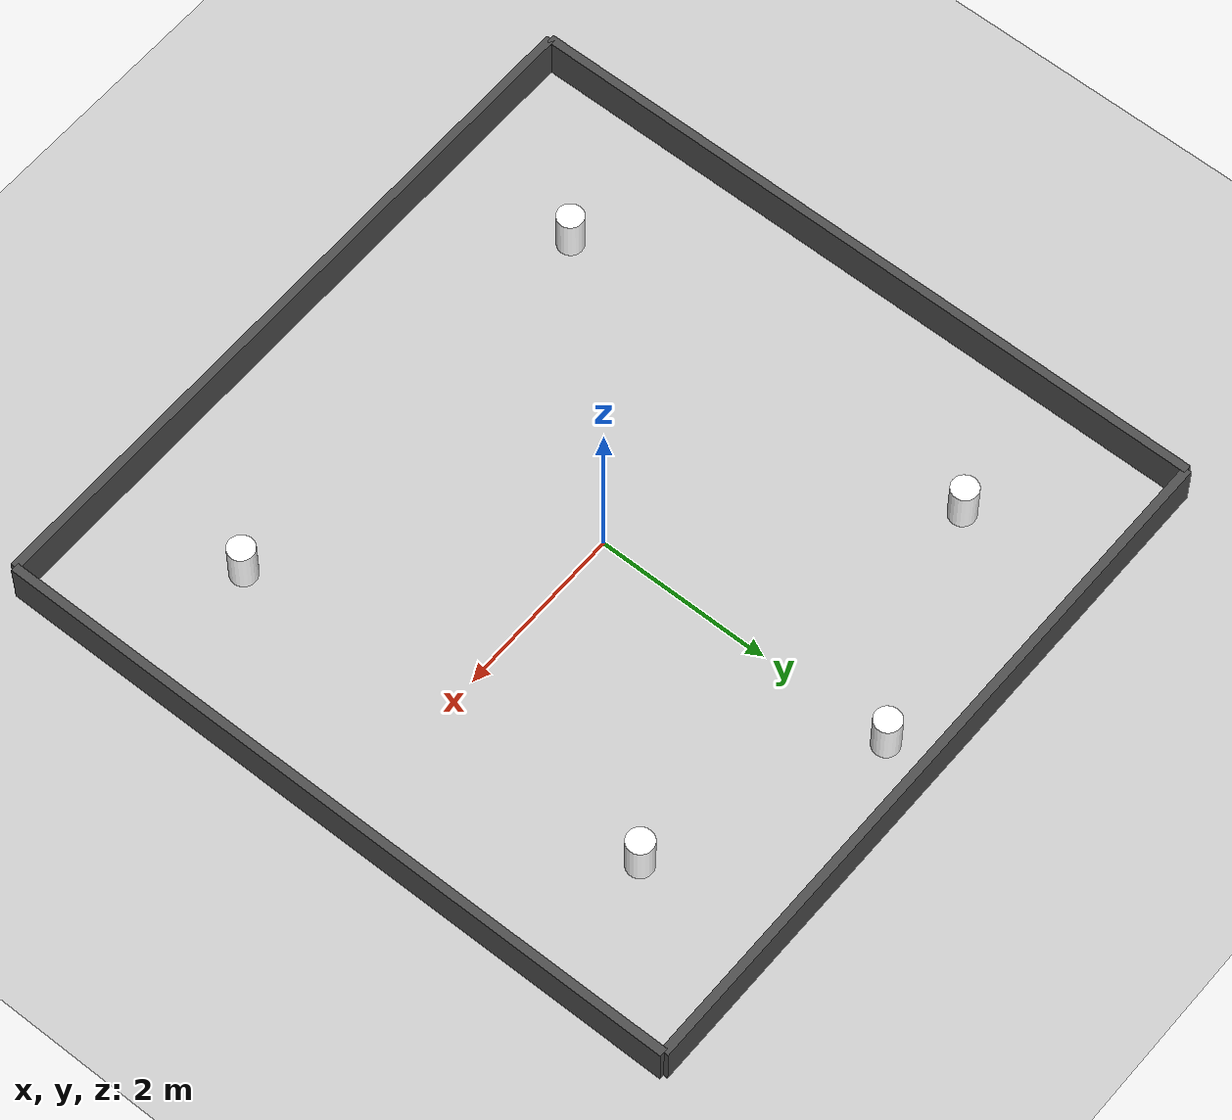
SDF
<?xml version="1.0" ?>
<sdf version="1.8">
  <world name="demo_world">

    <gravity>0 0 -9.8</gravity>
    <physics default="0" name="default_physics" type="ode">
      <max_step_size>0.01</max_step_size>
      <real_time_factor>1</real_time_factor>
      <real_time_update_rate>100</real_time_update_rate>
    </physics>

    <plugin filename="gz-sim-physics-system"
            name="gz::sim::systems::Physics"/>
    <plugin filename="gz-sim-user-commands-system"
            name="gz::sim::systems::UserCommands"/>
    <plugin filename="gz-sim-scene-broadcaster-system"
            name="gz::sim::systems::SceneBroadcaster"/>

    <light name="sun" type="directional">
      <cast_shadows>true</cast_shadows>
      <pose>0 0 10 0 0 0</pose>
      <diffuse>0.8 0.8 0.8 1</diffuse>
      <specular>0.2 0.2 0.2 1</specular>
      <attenuation>
        <range>1000</range>
        <constant>0.9</constant>
        <linear>0.01</linear>
        <quadratic>0.001</quadratic>
      </attenuation>
      <direction>-0.5 0.1 -0.9</direction>
    </light>

    <!-- Ground plane -->
    <model name="ground_plane">
      <static>true</static>
      <link name="link">
        <collision name="collision">
          <geometry>
            <plane><normal>0 0 1</normal><size>100 100</size></plane>
          </geometry>
        </collision>
        <visual name="visual">
          <geometry>
            <plane><normal>0 0 1</normal><size>100 100</size></plane>
          </geometry>
          <material>
            <ambient>0.8 0.8 0.8 1</ambient>
            <diffuse>0.8 0.8 0.8 1</diffuse>
          </material>
        </visual>
      </link>
    </model>

    <!-- Walls (8x8m enclosure, 0.1m thick, 0.5m tall) -->
    <model name="wall_north">
      <static>true</static>
      <pose>0 4.05 0.25 0 0 0</pose>
      <link name="link">
        <collision name="collision">
          <geometry><box><size>8.1 0.1 0.5</size></box></geometry>
        </collision>
        <visual name="visual">
          <geometry><box><size>8.1 0.1 0.5</size></box></geometry>
          <material><ambient>0.3 0.3 0.3 1</ambient><diffuse>0.3 0.3 0.3 1</diffuse></material>
        </visual>
      </link>
    </model>

    <model name="wall_south">
      <static>true</static>
      <pose>0 -4.05 0.25 0 0 0</pose>
      <link name="link">
        <collision name="collision">
          <geometry><box><size>8.1 0.1 0.5</size></box></geometry>
        </collision>
        <visual name="visual">
          <geometry><box><size>8.1 0.1 0.5</size></box></geometry>
          <material><ambient>0.3 0.3 0.3 1</ambient><diffuse>0.3 0.3 0.3 1</diffuse></material>
        </visual>
      </link>
    </model>

    <model name="wall_east">
      <static>true</static>
      <pose>4.05 0 0.25 0 0 0</pose>
      <link name="link">
        <collision name="collision">
          <geometry><box><size>0.1 8.1 0.5</size></box></geometry>
        </collision>
        <visual name="visual">
          <geometry><box><size>0.1 8.1 0.5</size></box></geometry>
          <material><ambient>0.3 0.3 0.3 1</ambient><diffuse>0.3 0.3 0.3 1</diffuse></material>
        </visual>
      </link>
    </model>

    <model name="wall_west">
      <static>true</static>
      <pose>-4.05 0 0.25 0 0 0</pose>
      <link name="link">
        <collision name="collision">
          <geometry><box><size>0.1 8.1 0.5</size></box></geometry>
        </collision>
        <visual name="visual">
          <geometry><box><size>0.1 8.1 0.5</size></box></geometry>
          <material><ambient>0.3 0.3 0.3 1</ambient><diffuse>0.3 0.3 0.3 1</diffuse></material>
        </visual>
      </link>
    </model>

    <!-- 5 pillars -->
    <model name="pillar_1">
      <static>true</static>
      <pose>-2.5 -2.5 0.25 0 0 0</pose>
      <link name="link">
        <collision name="collision">
          <geometry><cylinder><radius>0.15</radius><length>0.5</length></cylinder></geometry>
        </collision>
        <visual name="visual">
          <geometry><cylinder><radius>0.15</radius><length>0.5</length></cylinder></geometry>
          <material><ambient>1 1 1 1</ambient><diffuse>1 1 1 1</diffuse></material>
        </visual>
      </link>
    </model>

    <model name="pillar_2">
      <static>true</static>
      <pose>-2.5 2.5 0.25 0 0 0</pose>
      <link name="link">
        <collision name="collision">
          <geometry><cylinder><radius>0.15</radius><length>0.5</length></cylinder></geometry>
        </collision>
        <visual name="visual">
          <geometry><cylinder><radius>0.15</radius><length>0.5</length></cylinder></geometry>
          <material><ambient>1 1 1 1</ambient><diffuse>1 1 1 1</diffuse></material>
        </visual>
      </link>
    </model>

    <model name="pillar_3">
      <static>true</static>
      <pose>2.5 -2.5 0.25 0 0 0</pose>
      <link name="link">
        <collision name="collision">
          <geometry><cylinder><radius>0.15</radius><length>0.5</length></cylinder></geometry>
        </collision>
        <visual name="visual">
          <geometry><cylinder><radius>0.15</radius><length>0.5</length></cylinder></geometry>
          <material><ambient>1 1 1 1</ambient><diffuse>1 1 1 1</diffuse></material>
        </visual>
      </link>
    </model>

    <model name="pillar_4">
      <static>true</static>
      <pose>2.5 2.5 0.25 0 0 0</pose>
      <link name="link">
        <collision name="collision">
          <geometry><cylinder><radius>0.15</radius><length>0.5</length></cylinder></geometry>
        </collision>
        <visual name="visual">
          <geometry><cylinder><radius>0.15</radius><length>0.5</length></cylinder></geometry>
          <material><ambient>1 1 1 1</ambient><diffuse>1 1 1 1</diffuse></material>
        </visual>
      </link>
    </model>

    <model name="pillar_5">
      <static>true</static>
      <pose>0.0 3.5 0.25 0 0 0</pose>
      <link name="link">
        <collision name="collision">
          <geometry><cylinder><radius>0.15</radius><length>0.5</length></cylinder></geometry>
        </collision>
        <visual name="visual">
          <geometry><cylinder><radius>0.15</radius><length>0.5</length></cylinder></geometry>
          <material><ambient>1 1 1 1</ambient><diffuse>1 1 1 1</diffuse></material>
        </visual>
      </link>
    </model>

  </world>
</sdf>
